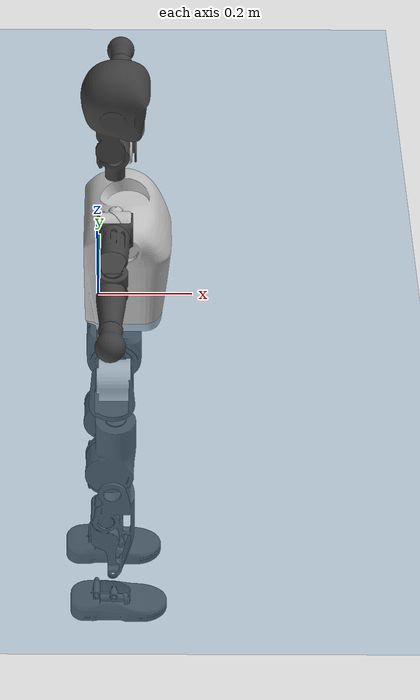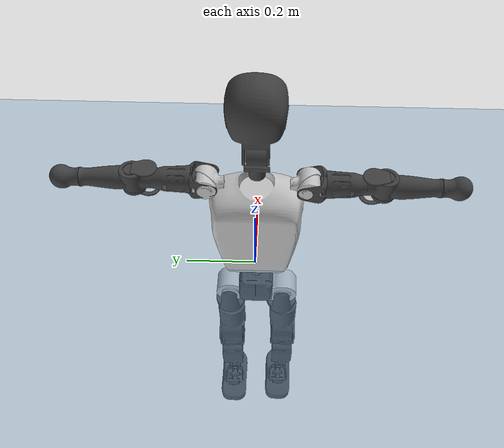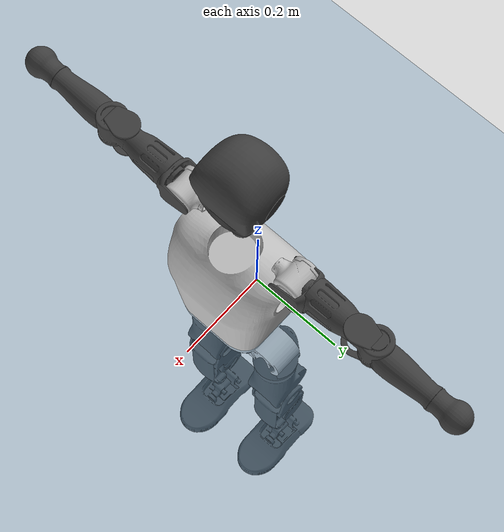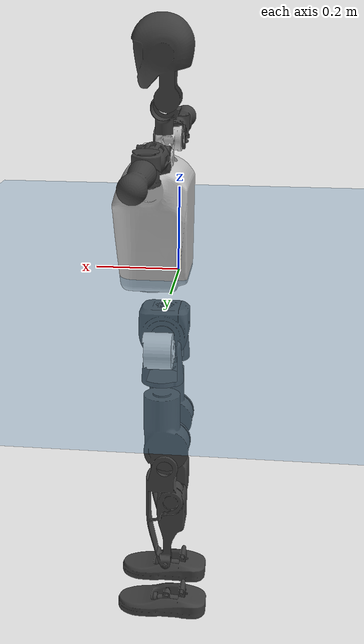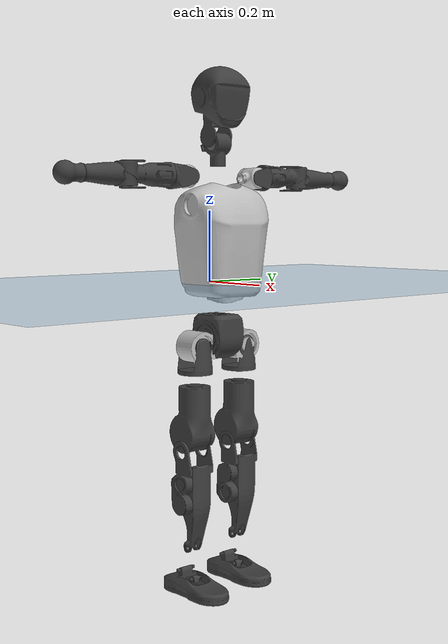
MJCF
<mujoco model="T1">
  <compiler angle="radian" assetdir="assets" balanceinertia="true" inertiafromgeom="false"/>

  <option timestep="0.005" density="1.2" viscosity="2e-05"/>

  <size nkey="1"/>

  <visual>
    <quality shadowsize="8192"/>
    <map shadowclip="0.5"/>
  </visual>

  <default>
    <default class="/">
      <joint armature="0.01" damping="0.01" frictionloss="0.1"/>
      <geom contype="0" conaffinity="0" group="1" solref="-1000 -80"/>
      <site size="0.01 0.005 0.005" group="5"/>
      <general forcelimited="true" biastype="affine" gainprm="25" biasprm="0 -25 -0.6"/>
      <default class="t1">
        <geom rgba="0.25 0.25 0.25 1"/>
        <default class="visual">
          <geom type="mesh" group="2"/>
        </default>
        <default class="collision">
          <geom group="3"/>
        </default>
        <default class="foot">
          <geom size="0.1115 0.05 0.015" type="box" condim="6" group="4" priority="1" solimp="0.015 1 0.015"/>
        </default>
        <default class="reward_collision_sphere">
          <geom group="5" rgba="1 0 0 1"/>
        </default>
      </default>
    </default>
  </default>

  <asset>
    <texture type="skybox" colorspace="auto" name="//unnamed_texture_0" builtin="gradient" rgb1="0.95 0.95 0.95" rgb2="0.95 0.95 0.95" width="100" height="600"/>
    <texture type="2d" colorspace="auto" name="texplane" builtin="checker" rgb1="0.345 0.575 0.748" rgb2="0.345 0.575 0.748" markrgb="1 1 1" width="512" height="512"/>
    <material name="MatPlane" class="/" texture="texplane" texuniform="true" texrepeat="2 2" specular="0.9"/>
    <mesh name="Trunk" class="/" file="Trunk.stl"/>
    <mesh name="H1" class="/" file="H1.stl"/>
    <mesh name="H2" class="/" file="H2.stl"/>
    <mesh name="AL1" class="/" file="AL1.stl"/>
    <mesh name="AL2" class="/" file="AL2.stl"/>
    <mesh name="AL3" class="/" file="AL3.stl"/>
    <mesh name="left_hand_link" class="/" file="left_hand_link.stl"/>
    <mesh name="AR1" class="/" file="AR1.stl"/>
    <mesh name="AR2" class="/" file="AR2.stl"/>
    <mesh name="AR3" class="/" file="AR3.stl"/>
    <mesh name="right_hand_link" class="/" file="right_hand_link.stl"/>
    <mesh name="Waist" class="/" file="Waist.stl"/>
    <mesh name="Hip_Pitch_Left" class="/" file="Hip_Pitch_Left.stl"/>
    <mesh name="Hip_Roll_Left" class="/" file="Hip_Roll_Left.stl"/>
    <mesh name="Hip_Yaw_Left" class="/" file="Hip_Yaw_Left.stl"/>
    <mesh name="Shank_Left" class="/" file="Shank_Left.stl"/>
    <mesh name="Ankle_Cross_Left" class="/" file="Ankle_Cross_Left.stl"/>
    <mesh name="left_foot_link" class="/" file="left_foot_link.stl"/>
    <mesh name="Hip_Pitch_Right" class="/" file="Hip_Pitch_Right.stl"/>
    <mesh name="Hip_Roll_Right" class="/" file="Hip_Roll_Right.stl"/>
    <mesh name="Hip_Yaw_Right" class="/" file="Hip_Yaw_Right.stl"/>
    <mesh name="Shank_Right" class="/" file="Shank_Right.stl"/>
    <mesh name="Ankle_Cross_Right" class="/" file="Ankle_Cross_Right.stl"/>
    <mesh name="right_foot_link" class="/" file="right_foot_link.stl"/>
  </asset>

  <worldbody>
    <geom name="floor" class="/" size="100 100 0.125" type="plane" group="0" material="MatPlane"/>
    <light name="toplight_shadow" class="/" pos="0 0 5" dir="0.0990148 0.0990148 -0.990148" type="directional" ambient="0.04 0.04 0.04" diffuse="0.55 0.55 0.55" specular="0.12 0.12 0.12"/>
    <light name="toplight_fill" class="/" pos="0 0 5" dir="0.0990148 0.0990148 -0.990148" type="directional" castshadow="false" ambient="0.04 0.04 0.04" diffuse="0.3 0.3 0.3" specular="0.08 0.08 0.08"/>
    <body name="trunk" childclass="t1" pos="0.00193628 -0.0020795 -0.00315114" quat="1 -1.07658e-05 -2.05883e-05 -1.21408e-05">
      <inertial pos="0.0337696 0.00284434 0.140666" quat="0.999958 -6.70508e-05 -0.00918728 0.000526993" mass="8.44052" diaginertia="0.00532422 0.0220788 0.238527"/>
      <joint name="//unnamed_joint_0" type="free" armature="0" damping="0" frictionloss="0"/>
      <geom name="//unnamed_geom_1" class="visual" rgba="0.76 0.76 0.76 1" mesh="Trunk"/>
      <geom name="//unnamed_geom_2" class="collision" size="0.0674361 0.0899147 0.134872" pos="0.0344159 0 0.160667" type="box"/>
      <geom name="//unnamed_geom_3" class="reward_collision_sphere" size="0.103402" pos="0.0344159 0 0.133889"/>
      <geom name="//unnamed_geom_4" class="reward_collision_sphere" size="0.0134872" pos="0.0344159 0.066721 0"/>
      <geom name="//unnamed_geom_5" class="reward_collision_sphere" size="0.0134872" pos="0.0344159 -0.066721 0"/>
      <geom name="//unnamed_geom_6" class="reward_collision_sphere" size="0.0134872" pos="0.0344159 0.08399 0.241"/>
      <geom name="//unnamed_geom_7" class="reward_collision_sphere" size="0.0134872" pos="0.0344159 -0.08399 0.241"/>
      <site name="imu" pos="0.0357899 -0.0377602 0.0346649" size="0.00899147"/>
      <camera name="track" pos="0 -1.56991 0" quat="0.707107 0.707107 0 0" mode="trackcom"/>
      <camera name="ego_camera" pos="0.0699789 0 0.562334" quat="-0.5 -0.5 0.5 0.5"/>
      <body name="H1" pos="0.0361142 -0.00227319 0.324588" quat="0.999994 0.000637787 -0.00121976 -0.00311093">
        <inertial pos="-0.000450933 0.000607908 0.0771971" quat="0.768143 -0.0197844 -0.0016812 0.639971" mass="0.26921" diaginertia="1.46927e-05 6.24291e-05 0.000600496"/>
        <joint name="AAHead_yaw" pos="0 0 0" axis="0.00744034 0.00738348 0.999945" range="-1.52353 1.54377" armature="0.00542522" damping="0.0288069" frictionloss="0.0931559"/>
        <geom name="//unnamed_geom_8" class="visual" mesh="H1"/>
        <body name="H2" pos="-0.00887157 0.00222248 0.0823638" quat="1 -0.000115889 -0.000585849 0.000301045">
          <inertial pos="0.00260918 0.00244756 0.130029" quat="0.987753 0.107117 -0.0836627 -0.0766129" mass="0.45232" diaginertia="0.000128907 0.000561006 0.00725137"/>
          <joint name="Head_pitch" pos="0 0 0" axis="-0.0174137 -0.999848 0.000256014" range="-1.25836 0.395738" armature="0.00921198" damping="0.00996166" frictionloss="0.0802991"/>
          <geom name="//unnamed_geom_9" class="visual" mesh="H2"/>
          <geom name="//unnamed_geom_10" class="collision" size="0.0719318" pos="0.00573598 0 0.147278"/>
          <geom name="//unnamed_geom_11" class="reward_collision_sphere" size="0.0809233" pos="0.011472 0 0.133889"/>
        </body>
      </body>
      <body name="AL1" pos="0.0383587 0.081053 0.294185" quat="0.999998 -0.00149362 -0.00092529 0.000590681">
        <inertial pos="-0.000764311 0.0300786 -0.00056524" quat="0.511068 0.498033 -0.500414 0.490263" mass="0.396586" diaginertia="8.25539e-05 0.000386507 0.00126572"/>
        <joint name="Left_Shoulder_Pitch" pos="0 0 0" axis="0.00197437 0.999872 0.0158931" stiffness="0.00102775" range="-3.31489 1.1799" armature="0.00867122" damping="0.0151773" frictionloss="0.102007"/>
        <geom name="//unnamed_geom_12" class="visual" rgba="0.76 0.76 0.76 1" mesh="AL1"/>
        <body name="AL2" pos="0.00464915 0.035769 -4.22425e-05" quat="1 -2.23805e-05 0.000105097 -0.000128049">
          <inertial pos="0.00499419 0.0285922 -0.0059158" quat="0.494215 0.505578 -0.490571 0.509394" mass="0.10352" diaginertia="2.38747e-05 0.000106531 0.000715255"/>
          <joint name="Left_Shoulder_Roll" pos="0 0 0" axis="-0.999956 0.00917769 -0.00190574" range="-1.71119 1.60324" armature="0.0118704" damping="0.0167869" frictionloss="0.0870311"/>
          <geom name="//unnamed_geom_13" class="visual" mesh="AL2"/>
          <body name="AL3" pos="-0.00287399 0.0447594 0.0056795" quat="0.999999 0.000166141 -0.00014091 0.00106959">
            <inertial pos="-0.00301534 0.0667607 -0.000232141" quat="0.703032 0.711146 0.00192199 0.00363556" mass="0.718419" diaginertia="0.00083065 0.00365702 0.0029212"/>
            <joint name="Left_Elbow_Pitch" pos="0 0 0" axis="0.0410526 -0.999157 -0.000744653" stiffness="0.0399874" range="-2.41417 2.17371" armature="0.0128588" damping="0.0526241" frictionloss="0.106312"/>
            <geom name="//unnamed_geom_14" class="visual" mesh="AL3"/>
            <geom name="//unnamed_geom_15" class="collision" size="0.0269744 0.0674361" pos="0 0.0392477 0" quat="0.707105 0.707108 0 0" type="cylinder"/>
            <geom name="//unnamed_geom_16" class="reward_collision_sphere" size="0.0323693"/>
            <body name="left_hand_link" pos="0.0046529 0.111321 -0.00335298" quat="1 0.000103641 0.000313905 -0.000349803">
              <inertial pos="-0.00158112 0.088061 -0.00101057" quat="0.708531 0.705679 3.95521e-05 0.00106759" mass="0.241773" diaginertia="0.000463243 0.00222523 0.000956501"/>
              <joint name="Left_Elbow_Yaw" pos="0 0 0" axis="-0.0146508 0.00294638 0.999888" range="-2.41931 0.0415101" armature="0.00552715" damping="0.017473" frictionloss="0.0996044"/>
              <geom name="//unnamed_geom_17" class="visual" mesh="left_hand_link"/>
              <geom name="//unnamed_geom_18" class="collision" size="0.0269744 0.0786754" pos="0 0.102044 0" quat="0.707105 0.707108 0 0" type="cylinder"/>
              <geom name="//unnamed_geom_19" class="reward_collision_sphere" size="0.0449574"/>
              <geom name="//unnamed_geom_20" class="reward_collision_sphere" size="0.0314702" pos="0 0.0863448 0"/>
              <geom name="//unnamed_geom_21" class="reward_collision_sphere" size="0.0314702" pos="0 0.168765 0"/>
            </body>
          </body>
        </body>
      </body>
      <body name="AR1" pos="0.0381203 -0.0851139 0.294035" quat="0.999999 -1.22959e-05 0.000706765 -0.00124858">
        <inertial pos="0.00627669 -0.0354675 -0.0037032" quat="0.503961 0.497956 -0.473471 0.523343" mass="0.386285" diaginertia="8.81326e-05 0.000400667 0.00117054"/>
        <joint name="Right_Shoulder_Pitch" pos="0 0 0" axis="0.00358273 -0.999893 0.0141605" range="-1.21662 3.29832" armature="0.00969624" damping="0" frictionloss="0.105925"/>
        <geom name="//unnamed_geom_22" class="visual" rgba="0.76 0.76 0.76 1" mesh="AR1"/>
        <body name="AR2" pos="-0.00113946 -0.0371693 0.000101519" quat="1 0.000170639 0.000122971 -3.38941e-06">
          <inertial pos="0.00301912 -0.0277643 -0.000990771" quat="0.511924 0.487039 -0.510198 0.490331" mass="0.112811" diaginertia="2.54536e-05 9.47734e-05 0.000738146"/>
          <joint name="Right_Shoulder_Roll" pos="0 0 0" axis="-1 -0.000536642 0.00051905" range="-1.7704 1.41898" armature="0.0106572" damping="0" frictionloss="0.0988346"/>
          <geom name="//unnamed_geom_23" class="visual" mesh="AR2"/>
          <body name="AR3" pos="-0.00218679 -0.0499241 0.00292484" quat="1 -9.37588e-05 -3.14531e-06 -0.000141779">
            <inertial pos="0.000252836 -0.0601192 -0.00468057" quat="0.707914 0.706034 -0.0158126 -0.0110991" mass="0.755657" diaginertia="0.000788351 0.00400952 0.00252924"/>
            <joint name="Right_Elbow_Pitch" pos="0 0 0" axis="0.000369975 0.99999 -0.00436214" range="-2.31851 2.34771" armature="0.00859664" damping="0" frictionloss="0.0880591"/>
            <geom name="//unnamed_geom_24" class="visual" mesh="AR3"/>
            <geom name="//unnamed_geom_25" class="collision" size="0.0269744 0.0674361" pos="0 -0.0392477 0" quat="0.707105 0.707108 0 0" type="cylinder"/>
            <geom name="//unnamed_geom_26" class="reward_collision_sphere" size="0.0323693"/>
            <body name="right_hand_link" pos="-0.00234084 -0.116324 -0.00102675" quat="1 0.000242693 -0.000185238 0.000223933">
              <inertial pos="0.000657232 -0.0881974 0.00552541" quat="0.701761 0.712357 0.00881421 0.000989801" mass="0.234304" diaginertia="0.000508458 0.00239314 0.000954064"/>
              <joint name="Right_Elbow_Yaw" pos="0 0 0" axis="0.0110395 -0.00283221 0.999935" range="0.0416023 2.46274" armature="0.0103526" damping="0.00433695" frictionloss="0.0755355"/>
              <geom name="//unnamed_geom_27" class="visual" mesh="right_hand_link"/>
              <geom name="//unnamed_geom_28" class="collision" size="0.0269744 0.0786754" pos="0 -0.102044 0" quat="0.707105 0.707108 0 0" type="cylinder"/>
              <geom name="//unnamed_geom_29" class="reward_collision_sphere" size="0.0449574"/>
              <geom name="//unnamed_geom_30" class="reward_collision_sphere" size="0.0314702" pos="0 -0.0863448 0"/>
              <geom name="//unnamed_geom_31" class="reward_collision_sphere" size="0.0314702" pos="0 -0.168765 0"/>
            </body>
          </body>
        </body>
      </body>
      <body name="Waist" pos="0.0319049 0.0022233 -0.153436" quat="1 0.000661259 -0.000249407 -0.000424067">
        <inertial pos="0.010489 -0.00388135 0.0101715" quat="0.985091 -0.00638982 -0.171907 0.00142377" mass="1.85008" diaginertia="0.000365012 0.00154958 0.0199991"/>
        <joint name="Waist" pos="0 0 0" axis="0.0191079 0.0322159 0.999298" range="-1.56119 1.56573" armature="0.00948446" damping="0" frictionloss="0.0857796"/>
        <geom name="//unnamed_geom_32" class="visual" mesh="Waist"/>
        <body name="Hip_Pitch_Left" pos="0.00671965 0.0805506 -0.00354957" quat="0.99999 0.00121784 0.00322175 -0.00295659">
          <inertial pos="0.00492642 -0.0129971 -0.0264294" quat="0.974043 0.225271 0.0221711 0.00145513" mass="0.801841" diaginertia="0.000123849 0.000469014 0.0053665"/>
          <joint name="Left_Hip_Pitch" pos="0 0 0" axis="0.000437129 1 0.000305439" stiffness="0.00399718" range="-1.8291 1.60285" armature="0.0111713" damping="0" frictionloss="0.0553732"/>
          <geom name="//unnamed_geom_33" class="visual" rgba="0.76 0.76 0.76 1" mesh="Hip_Pitch_Left"/>
          <body name="Hip_Roll_Left" pos="-0.00846213 0.00302565 -0.0179639" quat="0.99999 -0.00405369 -0.00130629 0.00150325">
            <inertial pos="-0.00215722 0.000686036 -0.065023" quat="0.704548 0.00163287 -0.0127561 0.70954" mass="0.293299" diaginertia="0.000107077 0.000469738 0.00221016"/>
            <joint name="Left_Hip_Roll" pos="0 0 0" axis="-0.999966 -0.00581769 0.00583011" stiffness="0.00454251" range="-1.56042 0.229742" armature="0.00758454" damping="0" frictionloss="0.0885036"/>
            <geom name="//unnamed_geom_34" class="visual" mesh="Hip_Roll_Left"/>
            <geom name="//unnamed_geom_35" class="reward_collision_sphere" size="0.0494531"/>
            <body name="Hip_Yaw_Left" pos="-0.000800789 0.000334918 -0.111565" quat="1 0.000315874 -0.000575846 -5.80516e-05">
              <inertial pos="-0.00439841 -0.00887623 -0.126258" quat="0.694159 -0.0326169 -0.0297098 0.718468" mass="1.4923" diaginertia="0.00151688 0.00715749 0.0108291"/>
              <joint name="Left_Hip_Yaw" pos="0 0 0" axis="0.000580517 0.00098596 -0.999999" range="-1.05771 0.97085" armature="0.00881852" damping="0" frictionloss="0.0761081"/>
              <geom name="//unnamed_geom_36" class="visual" mesh="Hip_Yaw_Left"/>
              <geom name="//unnamed_geom_37" class="collision" size="0.0449574 0.0719318" type="cylinder"/>
              <body name="Shank_Left" pos="-0.0118287 0.00505338 -0.177041" quat="0.999997 0.000303714 0.000376104 0.00232786">
                <inertial pos="-0.00250699 0.00351536 -0.166923" quat="0.997026 0.000521765 -0.0538153 0.0551669" mass="1.20751" diaginertia="0.00212694 0.00987374 0.0078578"/>
                <joint name="Left_Knee_Pitch" pos="0 0 0" axis="0.00021952 0.999996 0.00285465" range="-0.0258708 2.45039" armature="0.00692877" damping="0.0109709" frictionloss="0.0909237"/>
                <geom name="//unnamed_geom_38" class="visual" mesh="Shank_Left"/>
                <geom name="//unnamed_geom_39" class="collision" size="0.0449574 0.0674361" pos="0 0 -0.160667" type="cylinder"/>
                <geom name="//unnamed_geom_40" class="reward_collision_sphere" size="0.0584446"/>
                <body name="Ankle_Cross_Left" pos="-0.00237503 0.00440616 -0.374528" quat="1 -0.000173055 -2.91963e-06 0.000288224">
                  <inertial pos="-0.00382205 0.00255329 -0.0102502" quat="0.442303 0.535597 0.556085 0.45637" mass="0.0555259" diaginertia="1.7248e-06 7.79273e-06 4.98782e-05"/>
                  <joint name="Left_Ankle_Pitch" pos="0 0 0" axis="0.00501881 0.999984 -0.00251559" range="-0.72104 0.203283" armature="0.00777743" damping="0.0491988" frictionloss="0.0790089"/>
                  <geom name="//unnamed_geom_41" class="visual" mesh="Ankle_Cross_Left"/>
                  <body name="left_foot_link" pos="0.00180707 0.00169449 -0.0100405" quat="0.999993 0.000947841 -0.00354829 0.000698975">
                    <inertial pos="-0.00144553 0.00189489 -0.00992943" quat="-0.0101239 0.607497 -0.0117989 0.79417" mass="0.441874" diaginertia="0.000149672 0.000641527 0.00742859"/>
                    <joint name="Left_Ankle_Roll" pos="0 0 0" axis="-0.999613 -0.0060438 -0.0271451" range="-0.419302 0.284404" armature="0.00875639" damping="0.00577822" frictionloss="0.0482311"/>
                    <geom name="//unnamed_geom_42" class="visual" mesh="left_foot_link"/>
                    <geom name="left_foot" class="foot" size="0.104244 0.0579097 0.00881209" pos="0.00573598 0 -0.0200834"/>
                    <geom name="//unnamed_geom_44" class="reward_collision_sphere" size="0.0467557" pos="0.00573598 0 -0.0200834"/>
                    <geom name="//unnamed_geom_45" class="reward_collision_sphere" size="0.0269744" pos="0.0544918 -0.0180539 -0.0200834"/>
                    <geom name="//unnamed_geom_46" class="reward_collision_sphere" size="0.0269744" pos="-0.0401518 -0.0180539 -0.0200834"/>
                    <site name="left_foot" class="foot" pos="0.00573598 0 -0.0200834" size="0.00899147"/>
                  </body>
                </body>
              </body>
            </body>
          </body>
        </body>
        <body name="Hip_Pitch_Right" pos="0.00101105 -0.0833735 0.000410008" quat="0.999999 -0.000329416 0.00069648 0.000641983">
          <inertial pos="0.000680827 0.00594579 -0.0229229" quat="0.97297 -0.225855 0.0222143 -0.0427301" mass="0.822586" diaginertia="0.00012393 0.000471829 0.0059159"/>
          <joint name="Right_Hip_Pitch" pos="0 0 0" axis="0.00203855 -0.999986 0.00480901" stiffness="0.00677241" range="-1.53566 1.83732" armature="0.00856837" damping="0.00785529" frictionloss="0.092804"/>
          <geom name="//unnamed_geom_47" class="visual" rgba="0.76 0.76 0.76 1" mesh="Hip_Pitch_Right"/>
          <body name="Hip_Roll_Right" pos="-0.00339624 0.00157587 -0.0199258" quat="1 0.000541726 0.00038688 6.4707e-05">
            <inertial pos="0.000471756 -0.00298664 -0.0722514" quat="0.712336 -0.0225686 -0.015345 0.701308" mass="0.301077" diaginertia="0.000112516 0.000471016 0.00241559"/>
            <joint name="Right_Hip_Roll" pos="0 0 0" axis="-0.999975 -0.00148117 0.00698374" stiffness="0.0485369" range="-0.239849 1.56714" armature="0.0100303" damping="0.00545618" frictionloss="0.0915488"/>
            <geom name="//unnamed_geom_48" class="visual" mesh="Hip_Roll_Right"/>
            <geom name="//unnamed_geom_49" class="reward_collision_sphere" size="0.0494531"/>
            <body name="Hip_Yaw_Right" pos="0.00562277 -0.00862949 -0.110145" quat="1 2.18947e-05 -6.63356e-06 1.48942e-05">
              <inertial pos="0.000275502 0.00071007 -0.111477" quat="0.699003 -0.038243 -0.0435245 0.712768" mass="1.50245" diaginertia="0.00166798 0.00791335 0.0116998"/>
              <joint name="Right_Hip_Yaw" pos="0 0 0" axis="-0.00306863 -0.010867 -0.999936" range="-1.12041 1.04471" armature="0.0100239" damping="0.00145607" frictionloss="0.0929901"/>
              <geom name="//unnamed_geom_50" class="visual" mesh="Hip_Yaw_Right"/>
              <geom name="//unnamed_geom_51" class="collision" size="0.0449574 0.0719318" type="cylinder"/>
              <body name="Shank_Right" pos="-0.00773229 -0.00437166 -0.18312" quat="1 0.000258295 -0.000212059 -0.000762197">
                <inertial pos="-0.012535 0.00214627 -0.163488" quat="0.99942 -0.01437 -0.00120427 -0.0308525" mass="1.44672" diaginertia="0.00233403 0.0102949 0.00907788"/>
                <joint name="Right_Knee_Pitch" pos="0 0 0" axis="-0.0230126 -0.999735 0.000530156" range="-2.36915 0.0234651" armature="0.0078998" damping="0.0191958" frictionloss="0.0695576"/>
                <geom name="//unnamed_geom_52" class="visual" mesh="Shank_Right"/>
                <geom name="//unnamed_geom_53" class="collision" size="0.0449574 0.0674361" pos="0 0 -0.160667" type="cylinder"/>
                <geom name="//unnamed_geom_54" class="reward_collision_sphere" size="0.0584446"/>
                <body name="Ankle_Cross_Right" pos="0.00139683 0.0076873 -0.374352" quat="0.999994 -0.00324382 0.000884419 -0.00114128">
                  <inertial pos="-0.00383131 0.000534953 -0.0127242" quat="0.445812 0.553823 0.550974 0.436989" mass="0.0535445" diaginertia="1.91958e-06 7.56837e-06 4.81433e-05"/>
                  <joint name="Right_Ankle_Pitch" pos="0 0 0" axis="-0.000556184 -1 -0.000301646" range="-0.325335 0.713606" armature="0.00807625" damping="0" frictionloss="0.0914474"/>
                  <geom name="//unnamed_geom_55" class="visual" mesh="Ankle_Cross_Right"/>
                  <body name="right_foot_link" pos="0.00114284 -0.000307183 -0.0131806" quat="0.999997 -0.00214589 -0.000890066 -0.000384246">
                    <inertial pos="0.00441356 -0.00137888 -0.01158" quat="-0.00196665 0.620008 -0.00188497 0.784591" mass="0.498561" diaginertia="0.000182298 0.00073807 0.00937056"/>
                    <joint name="Right_Ankle_Roll" pos="0 0 0" axis="-0.999904 0.011701 -0.0074377" range="-0.483802 0.467003" armature="0.0092015" damping="0.0166167" frictionloss="0.0960532"/>
                    <geom name="//unnamed_geom_56" class="visual" mesh="right_foot_link"/>
                    <geom name="right_foot" class="foot" size="0.0919809 0.0543953 0.0122798" pos="0.00573598 0 -0.0200834"/>
                    <geom name="//unnamed_geom_58" class="reward_collision_sphere" size="0.0359659"/>
                    <geom name="//unnamed_geom_59" class="reward_collision_sphere" size="0.0269744" pos="0.00573598 0 -0.0200834"/>
                    <geom name="//unnamed_geom_60" class="reward_collision_sphere" size="0.0269744" pos="0.0544918 0.0180539 -0.0200834"/>
                    <geom name="//unnamed_geom_61" class="reward_collision_sphere" size="0.0269744" pos="-0.0401518 0.0180539 -0.0200834"/>
                    <site name="right_foot" class="foot" pos="0.00573598 0 -0.0200834" size="0.00899147"/>
                  </body>
                </body>
              </body>
            </body>
          </body>
        </body>
      </body>
    </body>
  </worldbody>

  <contact>
    <pair class="/" geom1="floor" geom2="left_foot" name="//unnamed_contact_0"/>
    <pair class="/" geom1="floor" geom2="right_foot" name="//unnamed_contact_1"/>
  </contact>

  <actuator>
    <general name="AAHead_yaw" class="/" joint="AAHead_yaw" forcerange="-6.16855 6.16855" gainprm="26.5697" biasprm="0 -26.5697 -0.582194"/>
    <general name="Head_pitch" class="/" joint="Head_pitch" forcerange="-6.59821 6.59821" gainprm="26.5697" biasprm="0 -26.5697 -0.582194"/>
    <general name="Left_Shoulder_Pitch" class="/" joint="Left_Shoulder_Pitch" forcerange="-17.3523 17.3523" gainprm="26.5697" biasprm="0 -26.5697 -0.582194"/>
    <general name="Left_Shoulder_Roll" class="/" joint="Left_Shoulder_Roll" forcerange="-17.2908 17.2908" gainprm="26.5697" biasprm="0 -26.5697 -0.582194"/>
    <general name="Left_Elbow_Pitch" class="/" joint="Left_Elbow_Pitch" forcerange="-20.877 20.877" gainprm="26.5697" biasprm="0 -26.5697 -0.582194"/>
    <general name="Left_Elbow_Yaw" class="/" joint="Left_Elbow_Yaw" forcerange="-12.5017 12.5017" gainprm="26.5697" biasprm="0 -26.5697 -0.582194"/>
    <general name="Right_Shoulder_Pitch" class="/" joint="Right_Shoulder_Pitch" forcerange="-12.2002 12.2002" gainprm="26.5697" biasprm="0 -26.5697 -0.582194"/>
    <general name="Right_Shoulder_Roll" class="/" joint="Right_Shoulder_Roll" forcerange="-16.4019 16.4019" gainprm="26.5697" biasprm="0 -26.5697 -0.582194"/>
    <general name="Right_Elbow_Pitch" class="/" joint="Right_Elbow_Pitch" forcerange="-16.3913 16.3913" gainprm="26.5697" biasprm="0 -26.5697 -0.582194"/>
    <general name="Right_Elbow_Yaw" class="/" joint="Right_Elbow_Yaw" forcerange="-16.2556 16.2556" gainprm="26.5697" biasprm="0 -26.5697 -0.582194"/>
    <general name="Waist" class="/" joint="Waist" forcerange="-25.416 25.416" gainprm="26.5697" biasprm="0 -26.5697 -0.582194"/>
    <general name="Left_Hip_Pitch" class="/" joint="Left_Hip_Pitch" forcerange="-41.0222 41.0222" gainprm="26.5697" biasprm="0 -26.5697 -0.582194"/>
    <general name="Left_Hip_Roll" class="/" joint="Left_Hip_Roll" forcerange="-20.2715 20.2715" gainprm="26.5697" biasprm="0 -26.5697 -0.582194"/>
    <general name="Left_Hip_Yaw" class="/" joint="Left_Hip_Yaw" forcerange="-34.9053 34.9053" gainprm="26.5697" biasprm="0 -26.5697 -0.582194"/>
    <general name="Left_Knee_Pitch" class="/" joint="Left_Knee_Pitch" forcerange="-69.5233 69.5233" gainprm="26.5697" biasprm="0 -26.5697 -0.582194"/>
    <general name="Left_Ankle_Pitch" class="/" joint="Left_Ankle_Pitch" forcerange="-18.5341 18.5341" gainprm="26.5697" biasprm="0 -26.5697 -0.582194"/>
    <general name="Left_Ankle_Roll" class="/" joint="Left_Ankle_Roll" forcerange="-13.3979 13.3979" gainprm="26.5697" biasprm="0 -26.5697 -0.582194"/>
    <general name="Right_Hip_Pitch" class="/" joint="Right_Hip_Pitch" forcerange="-41.3922 41.3922" gainprm="26.5697" biasprm="0 -26.5697 -0.582194"/>
    <general name="Right_Hip_Roll" class="/" joint="Right_Hip_Roll" forcerange="-26.3103 26.3103" gainprm="26.5697" biasprm="0 -26.5697 -0.582194"/>
    <general name="Right_Hip_Yaw" class="/" joint="Right_Hip_Yaw" forcerange="-25.3832 25.3832" gainprm="26.5697" biasprm="0 -26.5697 -0.582194"/>
    <general name="Right_Knee_Pitch" class="/" joint="Right_Knee_Pitch" forcerange="-55.2834 55.2834" gainprm="26.5697" biasprm="0 -26.5697 -0.582194"/>
    <general name="Right_Ankle_Pitch" class="/" joint="Right_Ankle_Pitch" forcerange="-21.78 21.78" gainprm="26.5697" biasprm="0 -26.5697 -0.582194"/>
    <general name="Right_Ankle_Roll" class="/" joint="Right_Ankle_Roll" forcerange="-13.4636 13.4636" gainprm="26.5697" biasprm="0 -26.5697 -0.582194"/>
  </actuator>

  <sensor>
    <gyro site="imu" name="imu_angular_velocity"/>
    <velocimeter site="imu" name="imu_linear_velocity"/>
    <framelinvel objtype="site" objname="left_foot" name="left_foot_global_linear_velocity"/>
    <framelinvel objtype="site" objname="right_foot" name="right_foot_global_linear_velocity"/>
  </sensor>

  <keyframe>
    <key name="home" qpos="0 0 0.6385 1 0 0 0 0 0 0 1.4 0 -0.4 0 -1.4 0 0.4 0 -0.4 0 0 0.8 -0.4 0 0.4 0 0 -0.8 0.4 0"/>
  </keyframe>
</mujoco>
